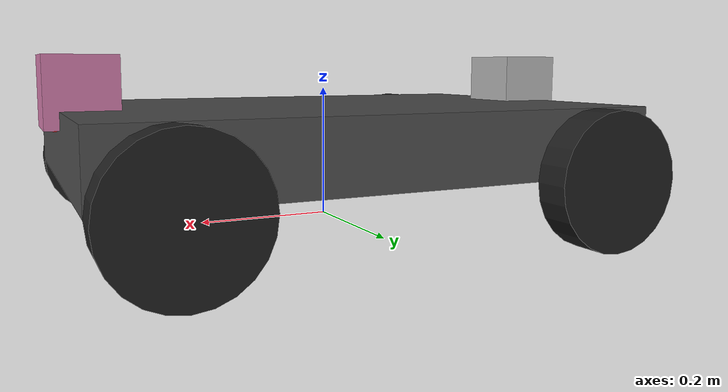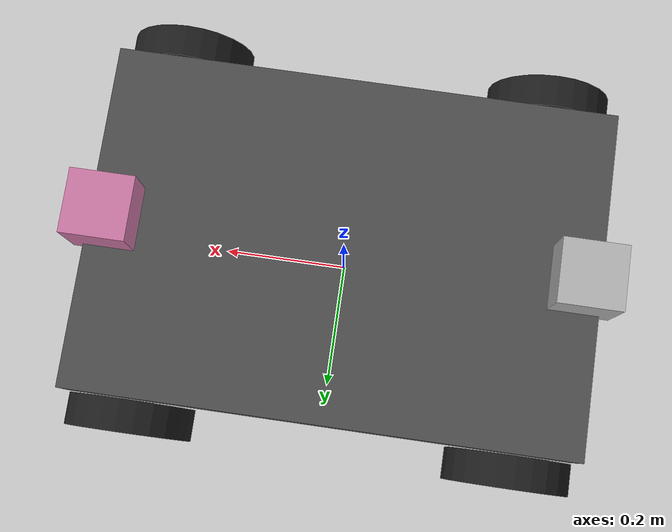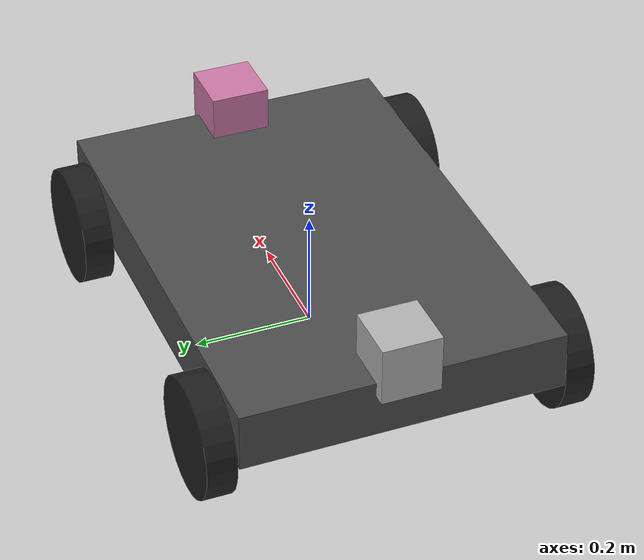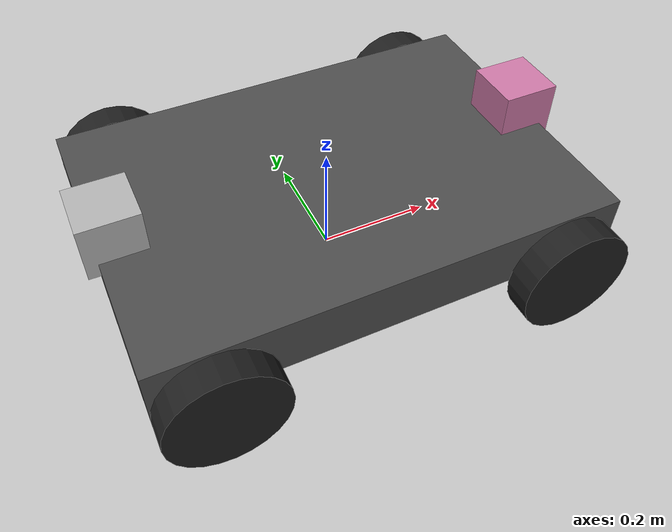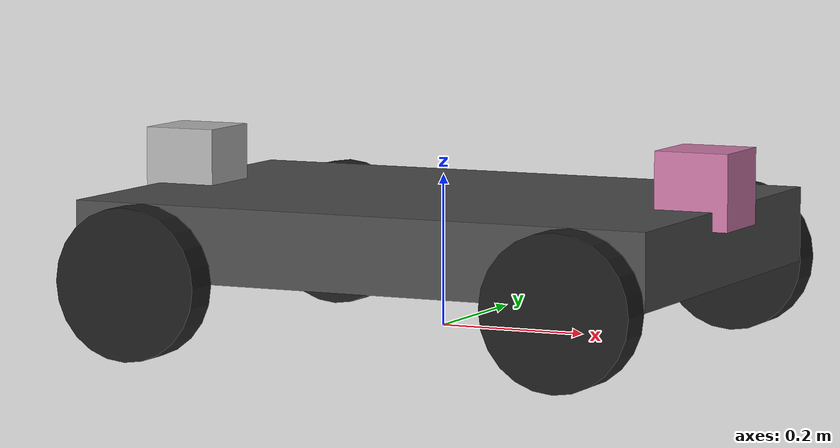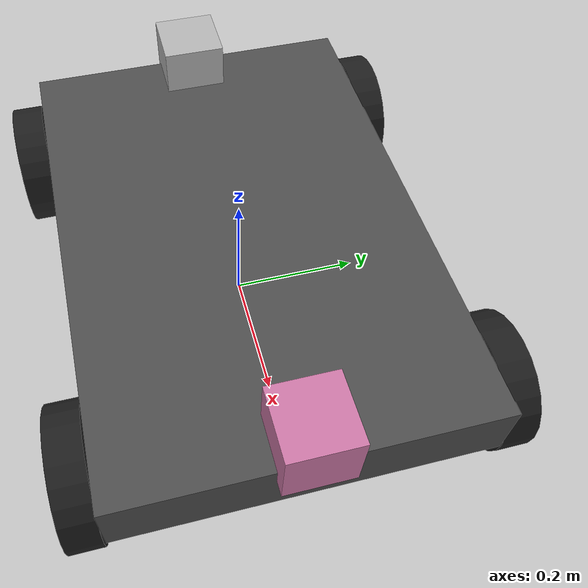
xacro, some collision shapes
<?xml version="1.0"?>
<robot xmlns:xacro="http://www.ros.org/wiki/xacro" name="my_robot">

  <link name="base_link">
  <inertial>
    <origin xyz="0 0 0.125" />
    <mass value="50" />
    <inertia  ixx="1.1" ixy="1.0"  ixz="0.0"  iyy="0.1"  iyz="0.0"  izz="0.1" />
  </inertial>
  <visual>
    <origin xyz="0 0 0.125"/>
    <geometry>
      <box size="0.8 0.545 0.1" />
    </geometry>
  </visual>
  <collision>
    <origin xyz="0 0 0.125"/>
    <geometry>
      <box size="0.8 0.545 0.1" />
    </geometry>
  </collision>
  </link>

  <gazebo reference="base_link">
    <material>Gazebo/DarkGrey</material>
  </gazebo>

  <link name="right_wheel">
  <inertial>
    <origin rpy="1.5707963267948966 0 0" xyz="0 0 0" />
    <mass value="1.1" />
    <inertia  ixx="1.01" ixy="0.0"  ixz="0.0"  iyy="1.01"  iyz="0.0"  izz="1.01" />
  </inertial>
  <visual>
    <origin rpy="1.5707963267948966 0 0" xyz="0 0 0"/>
    <geometry>
      <cylinder length="0.05" radius="0.1"/>
    </geometry>
  </visual>
  <collision>
    <origin rpy="1.5707963267948966 0 0" xyz="0 0 0"/>
    <geometry>
      <cylinder length="0.05" radius="0.1"/>
    </geometry>
  </collision>
  </link>

  <joint name="base_link_right_wheel" type="continuous">
    <parent link="base_link"/>
    <child link="right_wheel"/>
    <axis xyz="0 1 0"/>
    <origin xyz="0.3 -0.3 0.075"/>
  </joint>

  <transmission name="T_base_link_right_wheel">
    <type>transmission_interface/SimpleTransmission</type>
    <actuator name="motor_1">
      <mechanicalReduction>1</mechanicalReduction>
      <hardwareInterface>hardware_interface/VelocityJointInterface</hardwareInterface>
    </actuator>
    <joint name="base_link_right_wheel">
      <hardwareInterface>hardware_interface/VelocityJointInterface</hardwareInterface>
    </joint>
  </transmission>

  <link name="left_wheel">
  <inertial>
    <origin rpy="1.5707963267948966 0 0" xyz="0 0 0" />
    <mass value="1.1" />
    <inertia  ixx="1.01" ixy="0.0"  ixz="0.0"  iyy="1.01"  iyz="0.0"  izz="1.01" />
  </inertial>
  <visual>
    <origin rpy="1.5707963267948966 0 0" xyz="0 0 0"/>
    <geometry>
      <cylinder length="0.05" radius="0.1"/>
    </geometry>
  </visual>
  <collision>
    <origin rpy="1.5707963267948966 0 0" xyz="0 0 0"/>
    <geometry>
      <cylinder length="0.05" radius="0.1"/>
    </geometry>
  </collision>
  </link>

  <joint name="base_link_left_wheel" type="continuous">
    <parent link="base_link"/>
    <child link="left_wheel"/>
    <axis xyz="0 1 0"/>
    <origin xyz="0.3 0.3 0.075"/>
  </joint>

  <transmission name="T_base_link_left_wheel">
    <type>transmission_interface/SimpleTransmission</type>
    <actuator name="motor_2">
      <mechanicalReduction>1</mechanicalReduction>
      <hardwareInterface>hardware_interface/VelocityJointInterface</hardwareInterface>
    </actuator>
    <joint name="base_link_left_wheel">
      <hardwareInterface>hardware_interface/VelocityJointInterface</hardwareInterface>
    </joint>
  </transmission>

  <link name="right_back_wheel">
  <inertial>
    <origin rpy="1.5707963267948966 0 0" xyz="0 0 0" />
    <mass value="1.1" />
    <inertia  ixx="1.01" ixy="0.0"  ixz="0.0"  iyy="1.01"  iyz="0.0"  izz="1.01" />
  </inertial>
  <visual>
    <origin rpy="1.5707963267948966 0 0" xyz="0 0 0"/>
    <geometry>
      <cylinder length="0.05" radius="0.1"/>
    </geometry>
  </visual>
  <collision>
    <origin rpy="1.5707963267948966 0 0" xyz="0 0 0"/>
    <geometry>
      <cylinder length="0.05" radius="0.1"/>
    </geometry>
  </collision>
  </link>
<!-- front_camera -->
<link name="front_camera_link">
    <collision>
      <origin xyz="0 0 0" rpy="0 0 0"/>
      <geometry>
    <box size="0.01 0.01 0.01"/>
      </geometry>
    </collision>

    <visual>
      <origin xyz="0 0 0" rpy="0 0 0"/>
      <geometry>
    <box size="0.01 0.01 0.01"/>
      </geometry>
      <material name="red"/>
    </visual>

    <inertial>
      <mass value="1e-5" />
      <origin xyz="0 0 0" rpy="0 0 0"/>
      <inertia ixx="1e-6" ixy="0" ixz="0" iyy="1e-6" iyz="0" izz="1e-6" />
    </inertial>
  </link>

  <joint name="front_camera_joint" type="fixed">
    <axis xyz="0 1 0" />
    <origin xyz="0.03 0.0 -0.05" rpy="0 0 0"/>
    <parent link="front_hokuyo_link"/>
    <child link="front_camera_link"/>
  </joint>

<!-- back_camera -->
<link name="back_camera_link">
    <collision>
      <origin xyz="0 0 0" rpy="0 0 0"/>
      <geometry>
    <box size="0.01 0.01 0.01"/>
      </geometry>
    </collision>

    <visual>
      <origin xyz="0 0 0" rpy="0 0 0"/>
      <geometry>
    <box size="0.01 0.01 0.01"/>
      </geometry>
      <material name="red"/>
    </visual>

    <inertial>
      <mass value="1e-5" />
      <origin xyz="0 0 0" rpy="0 0 0"/>
      <inertia ixx="1e-6" ixy="0" ixz="0" iyy="1e-6" iyz="0" izz="1e-6" />
    </inertial>
  </link>

  <joint name="back_camera_joint" type="fixed">
    <axis xyz="0 1 0" />
    <origin xyz="-0.4 0.0 0.15" rpy="0 0 3.1415926"/>
    <parent link="base_link"/>
    <child link="back_camera_link"/>
  </joint>

  <!-- front Hokuyo Laser -->
   <joint name="front_hokuyo_joint" type="fixed">
    <axis xyz="0 1 0" />
    <origin xyz="0.37 0 0.2" rpy="0 0 0"/>
    <parent link="base_link"/>
    <child link="front_hokuyo_link"/>
  </joint>

  <link name="front_hokuyo_link">
    <collision>
      <origin xyz="0 0 0" rpy="0 0 0"/>
      <geometry>
    <box size="0.1 0.1 0.1"/>
      </geometry>
    </collision>

    <visual>
      <origin xyz="0 0 0" rpy="0 0 0"/>
      <geometry>
        <mesh filename="package://convoy_gazebo/urdf/hokuyo.dae"/>
      </geometry>
    </visual>

    <inertial>
      <mass value="1e-5" />
      <origin xyz="0 0 0" rpy="0 0 0"/>
      <inertia ixx="1e-6" ixy="0" ixz="0" iyy="1e-6" iyz="0" izz="1e-6" />
    </inertial>
  </link>

 <!-- back Hokuyo Laser -->
   <joint name="back_hokuyo_joint" type="fixed">
    <axis xyz="0 1 0" />
    <origin xyz="-0.37 0 0.2" rpy="0 0 3.1415926"/>
    <parent link="base_link"/>
    <child link="back_hokuyo_link"/>
  </joint>

  <link name="back_hokuyo_link">
    <collision>
      <origin xyz="0 0 0" rpy="0 0 0"/>
      <geometry>
    <box size="0.1 0.1 0.1"/>
      </geometry>
    </collision>

    <visual>
      <origin xyz="0 0 0" rpy="0 0 0"/>
      <geometry>
        <mesh filename="package://convoy_gazebo/urdf/hokuyo.dae"/>
      </geometry>
    </visual>

    <inertial>
      <mass value="1e-5" />
      <origin xyz="0 0 0" rpy="0 0 0"/>
      <inertia ixx="1e-6" ixy="0" ixz="0" iyy="1e-6" iyz="0" izz="1e-6" />
    </inertial>
  </link>

<!--   BLA  -->

  <joint name="base_link_right_back_wheel" type="continuous">
    <parent link="base_link"/>
    <child link="right_back_wheel"/>
    <axis xyz="0 1 0"/>
    <origin xyz="-0.3 -0.3 0.075"/>
  </joint>

  <transmission name="T_base_link_right_back_wheel">
    <type>transmission_interface/SimpleTransmission</type>
    <actuator name="motor_3">
      <mechanicalReduction>1</mechanicalReduction>
      <hardwareInterface>hardware_interface/VelocityJointInterface</hardwareInterface>
    </actuator>
    <joint name="base_link_right_back_wheel">
      <hardwareInterface>hardware_interface/VelocityJointInterface</hardwareInterface>
    </joint>
  </transmission>

  <link name="left_back_wheel">
  <inertial>
    <origin rpy="1.5707963267948966 0 0" xyz="0 0 0" />
    <mass value="1.1" />
    <inertia  ixx="1.01" ixy="0.0"  ixz="0.0"  iyy="1.01"  iyz="0.0"  izz="1.01" />
  </inertial>
  <visual>
    <origin rpy="1.5707963267948966 0 0" xyz="0 0 0"/>
    <geometry>
      <cylinder length="0.05" radius="0.1"/>
    </geometry>
  </visual>
  <collision>
    <origin rpy="1.5707963267948966 0 0" xyz="0 0 0"/>
    <geometry>
      <cylinder length="0.05" radius="0.1"/>
    </geometry>
  </collision>
  </link>

  <joint name="base_link_left_back_wheel" type="continuous">
    <parent link="base_link"/>
    <child link="left_back_wheel"/>
    <axis xyz="0 1 0"/>
    <origin xyz="-0.3 0.3 0.075"/>
  </joint>

  <transmission name="T_base_link_left_back_wheel">
    <type>transmission_interface/SimpleTransmission</type>
    <actuator name="motor_4">
      <mechanicalReduction>1</mechanicalReduction>
      <hardwareInterface>hardware_interface/VelocityJointInterface</hardwareInterface>
    </actuator>
    <joint name="base_link_left_back_wheel">
      <hardwareInterface>hardware_interface/VelocityJointInterface</hardwareInterface>
    </joint>
  </transmission>

<gazebo>
    <plugin name="skid_steer_drive_controller" filename="libgazebo_ros_skid_steer_drive.so">
        <alwaysOn>true</alwaysOn>
        <updateRate>100.0</updateRate>
        <leftFrontJoint>base_link_left_wheel</leftFrontJoint>
        <rightFrontJoint>base_link_right_wheel</rightFrontJoint>
        <leftRearJoint>base_link_left_back_wheel</leftRearJoint>
        <rightRearJoint>base_link_right_back_wheel</rightRearJoint>
        <wheelSeparation>0.545</wheelSeparation>
        <wheelDiameter>0.2</wheelDiameter>
        <torque>30</torque>
        <commandTopic>cmd_vel</commandTopic>
        <robotBaseFrame>base_link</robotBaseFrame>
        <broadcastTF>1</broadcastTF>
    </plugin>
</gazebo>

<!-- front camera -->
  <gazebo reference="front_camera_link">
    <sensor type="camera" name="front_camera">
      <update_rate>30.0</update_rate>
      <camera name="head">
        <horizontal_fov>2.2</horizontal_fov>
        <image>
          <width>640</width>
          <height>480</height>
          <format>R8G8B8</format>
        </image>
        <clip>
          <near>0.02</near>
          <far>300</far>
        </clip>
        <noise>
          <type>gaussian</type>
          <!-- Noise is sampled independently per pixel on each frame.
               That pixel's noise value is added to each of its color
               channels, which at that point lie in the range [0,1]. -->
          <mean>0.0</mean>
          <stddev>0.007</stddev>
        </noise>
      </camera>
      <plugin name="camera_controller" filename="libgazebo_ros_camera.so">
        <alwaysOn>true</alwaysOn>
        <updateRate>0.0</updateRate>
        <cameraName>/front_camera</cameraName>
        <imageTopicName>image_raw</imageTopicName>
        <cameraInfoTopicName>camera_info</cameraInfoTopicName>
        <frameName>front_camera_link</frameName>
        <hackBaseline>0.07</hackBaseline>
        <distortionK1>0.0</distortionK1>
        <distortionK2>0.0</distortionK2>
        <distortionK3>0.0</distortionK3>
        <distortionT1>0.0</distortionT1>
        <distortionT2>0.0</distortionT2>
      </plugin>
    </sensor>
  </gazebo>

<!-- back camera -->
  <gazebo reference="back_camera_link">
    <sensor type="camera" name="back_camera">
      <update_rate>30.0</update_rate>
      <camera name="head">
        <horizontal_fov>2.2</horizontal_fov>
        <image>
          <width>640</width>
          <height>480</height>
          <format>R8G8B8</format>
        </image>
        <clip>
          <near>0.02</near>
          <far>300</far>
        </clip>
        <noise>
          <type>gaussian</type>
          <!-- Noise is sampled independently per pixel on each frame.
               That pixel's noise value is added to each of its color
               channels, which at that point lie in the range [0,1]. -->
          <mean>0.0</mean>
          <stddev>0.007</stddev>
        </noise>
      </camera>
      <plugin name="camera_controller" filename="libgazebo_ros_camera.so">
        <alwaysOn>true</alwaysOn>
        <updateRate>0.0</updateRate>
        <cameraName>/back_camera</cameraName>
        <imageTopicName>image_raw</imageTopicName>
        <cameraInfoTopicName>camera_info</cameraInfoTopicName>
        <frameName>back_camera_link</frameName>
        <hackBaseline>0.07</hackBaseline>
        <distortionK1>0.0</distortionK1>
        <distortionK2>0.0</distortionK2>
        <distortionK3>0.0</distortionK3>
        <distortionT1>0.0</distortionT1>
        <distortionT2>0.0</distortionT2>
      </plugin>
    </sensor>
  </gazebo>

   <gazebo reference="front_hokuyo_link">
    <sensor type="gpu_ray" name="head_hokuyo_sensor">
      <pose>0 0 0 0 0 0</pose>
      <visualize>false</visualize>
      <update_rate>30</update_rate>
      <ray>
        <scan>
          <horizontal>
            <samples>720</samples>
            <resolution>1</resolution>
            <min_angle>-1.570796</min_angle>
            <max_angle>1.570796</max_angle>
          </horizontal>
        </scan>
        <range>
          <min>0.10</min>
          <max>10.0</max>
          <resolution>0.01</resolution>
        </range>
        <noise>
          <type>gaussian</type>
          <mean>0.0</mean>
          <stddev>0.01</stddev>
        </noise>
      </ray>
      <plugin name="gazebo_ros_head_hokuyo_controller" filename="libgazebo_ros_gpu_laser.so">
        <topicName>front_scan</topicName>
        <frameName>front_hokuyo_link</frameName>
      </plugin>
    </sensor>
  </gazebo>

   <gazebo reference="back_hokuyo_link">
    <sensor type="gpu_ray" name="head_hokuyo_sensor">
      <pose>0 0 0 0 0 0</pose>
      <visualize>false</visualize>
      <update_rate>30</update_rate>
      <ray>
        <scan>
          <horizontal>
            <samples>720</samples>
            <resolution>1</resolution>
            <min_angle>-1.570796</min_angle>
            <max_angle>1.570796</max_angle>
          </horizontal>
        </scan>
        <range>
          <min>0.10</min>
          <max>10.0</max>
          <resolution>0.01</resolution>
        </range>
        <noise>
          <type>gaussian</type>
          <mean>0.0</mean>
          <stddev>0.01</stddev>
        </noise>
      </ray>
      <plugin name="gazebo_ros_head_hokuyo_controller" filename="libgazebo_ros_gpu_laser.so">
        <topicName>back_scan</topicName>
        <frameName>back_hokuyo_link</frameName>
      </plugin>
    </sensor>
  </gazebo>

<!-- gazebo properties -->
<gazebo reference="right_wheel">
    <material>Gazebo/Black</material>
<mu1>0.5</mu1>
    <mu2>0.5</mu2>
  </gazebo>

<gazebo reference="left_back_wheel">
    <material>Gazebo/Black</material>
<mu1>0.8</mu1>
    <mu2>0.8</mu2>
  </gazebo>
<gazebo reference="left_wheel">
    <material>Gazebo/Black</material>
<mu1>0.5</mu1>
    <mu2>0.5</mu2>
  </gazebo>

<gazebo reference="right_back_wheel">
    <material>Gazebo/Black</material>
    <mu1>0.8</mu1>
    <mu2>0.8</mu2>
  </gazebo>

  <xacro:property name="front_hokuyo_link" value="0.05" />
  <xacro:property name="back_hokuyo_link" value="0.05" />
  <xacro:property name="front_camera_link" value="0.05" />
  <xacro:property name="back_camera_link" value="0.05" />

</robot>
